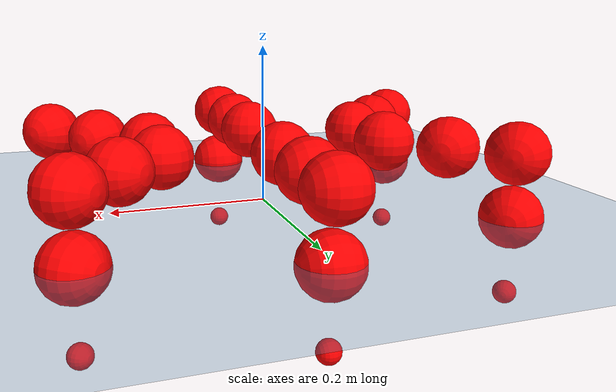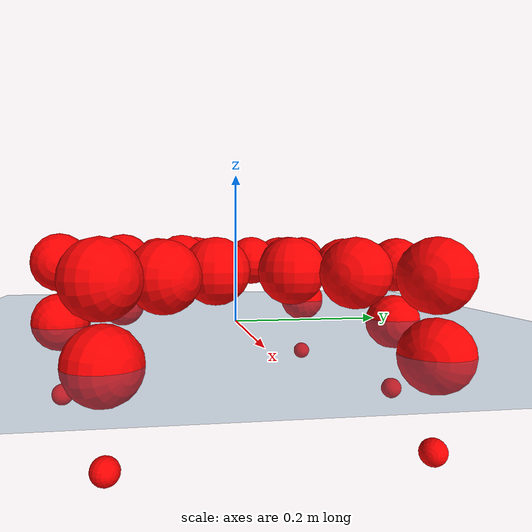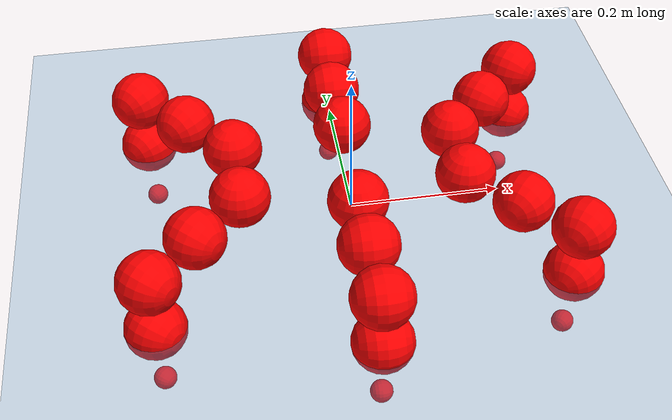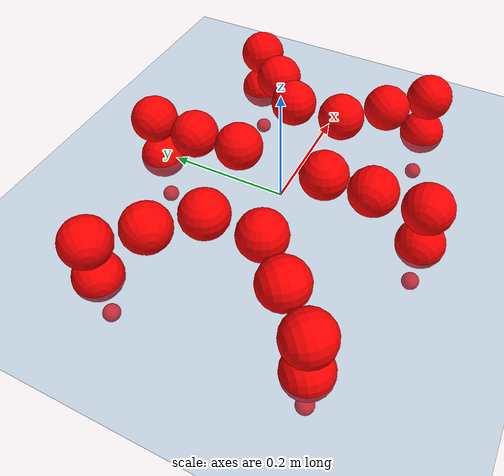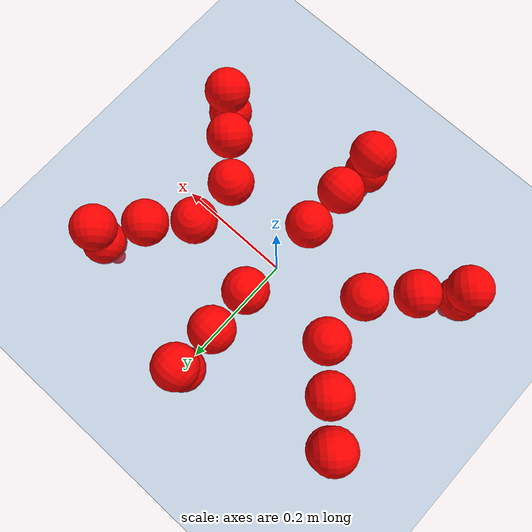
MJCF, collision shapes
<mujoco model="Golem">
  <compiler angle="radian" assetdir="assets" balanceinertia="true" inertiafromgeom="false"/>

  <option timestep="0.005" density="1.2" viscosity="2e-05"/>

  <size nkey="1"/>

  <visual>
    <quality shadowsize="8192"/>
    <map shadowclip="0.5"/>
  </visual>

  <default>
    <default class="/">
      <joint armature="0.01" damping="0.01" frictionloss="0.01"/>
      <geom contype="0" conaffinity="0" group="1" solref="-1000 -80"/>
      <site size="0.01 0.005 0.005" group="5"/>
      <general forcelimited="true" biastype="affine" gainprm="25" biasprm="0 -25 -0.5"/>
      <default class="visual">
        <geom type="mesh" group="2"/>
      </default>
      <default class="collision">
        <geom group="3"/>
      </default>
      <default class="foot">
        <geom size="0.01 0 0" condim="6" group="4" priority="1" solimp="0.015 1 0.01"/>
      </default>
      <default class="reward_collision_sphere">
        <geom group="5" rgba="1 0 0 1"/>
      </default>
    </default>
  </default>

  <asset>
    <texture type="skybox" colorspace="auto" name="//unnamed_texture_0" builtin="gradient" rgb1="0.95 0.95 0.95" rgb2="0.95 0.95 0.95" width="100" height="600"/>
    <texture type="2d" colorspace="auto" name="texplane" builtin="checker" rgb1="0.345 0.575 0.748" rgb2="0.345 0.575 0.748" markrgb="1 1 1" width="512" height="512"/>
    <material name="MatPlane" class="/" texture="texplane" texuniform="true" texrepeat="2 2" specular="0.9"/>
    <mesh name="body" class="/" file="body.stl" scale="0.001 0.001 0.001"/>
    <mesh name="coxa" class="/" file="coxa.stl" scale="0.001 0.001 0.001"/>
    <mesh name="femur" class="/" file="femur.stl" scale="0.001 0.001 0.001"/>
    <mesh name="tibia" class="/" file="tibia.stl" scale="0.001 0.001 0.001"/>
    <mesh name="tarsus" class="/" file="tarsus.stl" scale="0.001 0.001 0.001"/>
  </asset>

  <worldbody>
    <geom name="floor" class="/" size="100 100 0.125" type="plane" group="0" material="MatPlane"/>
    <light name="toplight_shadow" class="/" pos="0 0 5" dir="0.0990148 0.0990148 -0.990148" type="directional" ambient="0.04 0.04 0.04" diffuse="0.55 0.55 0.55" specular="0.12 0.12 0.12"/>
    <light name="toplight_fill" class="/" pos="0 0 5" dir="0.0990148 0.0990148 -0.990148" type="directional" castshadow="false" ambient="0.04 0.04 0.04" diffuse="0.3 0.3 0.3" specular="0.08 0.08 0.08"/>
    <body name="trunk" pos="-0.00226638 -8.31383e-05 -0.0010001" quat="1 -0.000225683 6.1249e-05 -2.18672e-05">
      <inertial pos="-0.000180418 -0.000509082 -0.00143311" quat="0.999902 -0.00348501 -0.01096 -0.00802476" mass="3.31447" diaginertia="0.00645237 0.00287585 0.0261552"/>
      <joint name="//unnamed_joint_0" type="free"/>
      <geom name="//unnamed_geom_1" class="/" pos="0 0 0.0775437" quat="1 0 0 0" type="mesh" rgba="0.9 0.9 0.9 1" mesh="body"/>
      <site name="imu" class="/" pos="0.1221 0.00803939 0.10702" size="0.00968303"/>
      <camera name="track" class="/" pos="0 -1.5566 0" quat="0.707107 0.707107 0 0" mode="trackcom"/>
      <camera name="ego_camera" class="/" pos="0.118948 0 0.121162" quat="-0.5 -0.5 0.5 0.5"/>
      <body name="coxa_RR" pos="-0.164208 -0.0634196 0.079382" quat="0.382092 -8.65509e-05 -0.000159361 -0.924124">
        <inertial pos="0.00265076 0.00280876 0.00300671" quat="0.999997 0.00123126 -0.00197679 -0.000595257" mass="0.183794" diaginertia="0.00644968 0.00297832 0.0257163"/>
        <joint name="coxa_joint_RR" class="/" pos="0 0 0" axis="0.000248286 0.00274208 -0.999996" range="-3.13106 3.14675" armature="0.00959619" damping="0.0120119" frictionloss="0.00946604"/>
        <geom name="//unnamed_geom_2" class="/" type="mesh" rgba="0.2 0.2 0.2 1" mesh="coxa"/>
        <geom name="//unnamed_geom_3" class="reward_collision_sphere" size="0.0387321" pos="-0.0274496 0 0"/>
        <body name="femur_RR" pos="0.0571389 0.0015082 -0.00125393" quat="0.500936 -0.500576 0.499213 0.499274">
          <inertial pos="0.000929903 0.00257632 0.000731305" quat="0.999985 0.00424368 0.00344945 -0.000250495" mass="0.176448" diaginertia="0.00631689 0.00280149 0.0256847"/>
          <joint name="femur_joint_RR" class="/" pos="0 0 0" axis="-0.00104448 0.000582704 -0.999999" stiffness="0.00737072" range="-3.08375 3.08557" armature="0.00966915" damping="0.0263208" frictionloss="0.0109962"/>
          <geom name="//unnamed_geom_4" class="/" type="mesh" rgba="0.9 0.9 0.9 1" mesh="femur"/>
          <geom name="//unnamed_geom_5" class="reward_collision_sphere" size="0.0387321"/>
          <body name="tibia_RR" pos="0.00162912 -0.0837127 0.00327972" quat="0.000863472 0.999999 0.000833902 -0.000862554">
            <inertial pos="-0.00222953 -0.00027439 -0.0010341" quat="0.999906 -0.000111284 0.00382258 -0.0131603" mass="0.179462" diaginertia="0.0065876 0.0028663 0.0266174"/>
            <joint name="tibia_joint_RR" class="/" pos="0 0 0" axis="0.000152576 0.00902006 0.999959" stiffness="0.00639432" range="-3.19227 3.15587" armature="0.00956627" damping="0.00542603" frictionloss="0.00930473"/>
            <geom name="//unnamed_geom_6" class="/" type="mesh" rgba="0.2 0.2 0.2 1" mesh="tibia"/>
            <geom name="//unnamed_geom_7" class="reward_collision_sphere" size="0.0387321"/>
            <body name="tarsus_RR" pos="0.0797384 0.00201545 -0.000646229" quat="0.999999 -0.0010507 -0.000656751 -0.000380116">
              <inertial pos="0.0541919 0.00104552 -0.00261259" quat="0.500099 0.500345 0.499501 0.500054" mass="0.183367" diaginertia="0.00640849 0.002914 0.0260144"/>
              <joint name="tarsus_joint_RR" class="/" pos="0 0 0" axis="-0.0140438 0.00436952 0.999892" range="-3.13889 3.13366" armature="0.00967299" damping="0.0405227" frictionloss="0.00876385"/>
              <geom name="//unnamed_geom_8" class="/" type="mesh" rgba="0.9 0.9 0.9 1" mesh="tarsus"/>
              <geom name="foot_1" class="foot" size="0.00929651" pos="0.102478 0 0" quat="0 -0.707107 0 0.707107"/>
              <geom name="//unnamed_geom_10" class="reward_collision_sphere" size="0.0387321"/>
              <geom name="//unnamed_geom_11" class="reward_collision_sphere" size="0.0145245" pos="0.098361 0 0"/>
              <site name="foot_1" class="foot" pos="0.102478 0 0" quat="0 -0.707107 0 0.707107" size="0.00968303"/>
            </body>
          </body>
        </body>
      </body>
      <body name="coxa_RM" pos="-0.0010138 -0.101971 0.0815113" quat="0.706707 0.000771826 -0.000470374 -0.707506">
        <inertial pos="-0.00103055 -0.000894771 -0.001013" quat="0.999992 0.00153489 0.00351691 -0.00111089" mass="0.18457" diaginertia="0.00625108 0.00298694 0.0260635"/>
        <joint name="coxa_joint_RM" class="/" pos="0 0 0" axis="0.0017744 -0.00366541 -0.999992" range="-3.10002 3.13185" armature="0.0108773" damping="0.0118499" frictionloss="0.0100157"/>
        <geom name="//unnamed_geom_12" class="/" type="mesh" rgba="0.2 0.2 0.2 1" mesh="coxa"/>
        <geom name="//unnamed_geom_13" class="reward_collision_sphere" size="0.0387321" pos="-0.0274496 0 0"/>
        <body name="femur_RM" pos="0.0508413 -0.000176238 0.000931404" quat="0.500826 -0.499331 0.499207 0.500634">
          <inertial pos="-0.000403639 -0.00296817 0.00254206" quat="1 -0.000133556 -1.47077e-05 0.000193689" mass="0.189014" diaginertia="0.00622346 0.00283539 0.0257923"/>
          <joint name="femur_joint_RM" class="/" pos="0 0 0" axis="-0.000527918 0.000501184 -1" range="-3.13647 3.10194" armature="0.00911953" damping="0.0205797" frictionloss="0.00961353"/>
          <geom name="//unnamed_geom_14" class="/" type="mesh" rgba="0.9 0.9 0.9 1" mesh="femur"/>
          <geom name="//unnamed_geom_15" class="reward_collision_sphere" size="0.0387321"/>
          <body name="tibia_RM" pos="-0.000960124 -0.0827286 0.00156376" quat="-0.000147763 1 -8.01377e-05 6.31062e-05">
            <inertial pos="-0.00243837 -2.24796e-05 -0.00170782" quat="0.999945 0.00946379 -0.00353368 0.00271341" mass="0.183193" diaginertia="0.0065332 0.0028357 0.0263568"/>
            <joint name="tibia_joint_RM" class="/" pos="0 0 0" axis="0.0064328 0.00752328 0.999951" stiffness="0.00302836" range="-3.14284 3.14874" armature="0.00960965" damping="0.000203944" frictionloss="0.00882715"/>
            <geom name="//unnamed_geom_16" class="/" type="mesh" rgba="0.2 0.2 0.2 1" mesh="tibia"/>
            <geom name="//unnamed_geom_17" class="reward_collision_sphere" size="0.0387321"/>
            <body name="tarsus_RM" pos="0.0791398 0.000547643 -0.00181054" quat="1 0.000351786 -4.58919e-05 -0.000312239">
              <inertial pos="0.0557609 -0.0004081 0.00033893" quat="0.509991 0.495277 0.495026 0.499558" mass="0.180716" diaginertia="0.00647474 0.00284224 0.0278354"/>
              <joint name="tarsus_joint_RM" class="/" pos="0 0 0" axis="0.00397899 0.00710197 0.999967" range="-3.18791 3.13364" armature="0.00825222" damping="0.00871088" frictionloss="0.00981364"/>
              <geom name="//unnamed_geom_18" class="/" type="mesh" rgba="0.9 0.9 0.9 1" mesh="tarsus"/>
              <geom name="foot_2" class="foot" size="0.0104684" pos="0.102478 0 0" quat="0 -0.707107 0 0.707107"/>
              <geom name="//unnamed_geom_20" class="reward_collision_sphere" size="0.0387321"/>
              <geom name="//unnamed_geom_21" class="reward_collision_sphere" size="0.0145245" pos="0.098361 0 0"/>
              <site name="foot_2" class="foot" pos="0.102478 0 0" quat="0 -0.707107 0 0.707107" size="0.00968303"/>
            </body>
          </body>
        </body>
      </body>
      <body name="coxa_RF" pos="0.162133 -0.0631356 0.078178" quat="0.923988 -0.000123209 0.000418177 -0.38242">
        <inertial pos="0.000878874 0.000645156 0.000156747" quat="0.999988 -0.00425858 -0.00135724 0.00201321" mass="0.183771" diaginertia="0.00633682 0.00277746 0.0260287"/>
        <joint name="coxa_joint_RF" class="/" pos="0 0 0" axis="0.0148338 -0.0105486 -0.999834" stiffness="0.0114863" range="-3.08163 3.12643" armature="0.00831777" damping="0.0257138" frictionloss="0.00964005"/>
        <geom name="//unnamed_geom_22" class="/" type="mesh" rgba="0.2 0.2 0.2 1" mesh="coxa"/>
        <geom name="//unnamed_geom_23" class="reward_collision_sphere" size="0.0387321" pos="-0.0274496 0 0"/>
        <body name="femur_RF" pos="0.0569676 -0.000122769 -0.00198536" quat="0.49954 -0.500006 0.500261 0.500192">
          <inertial pos="-0.000715642 -0.00290145 0.000130695" quat="0.999972 0.000625078 0.00745484 -0.000234542" mass="0.186995" diaginertia="0.00636171 0.00285496 0.0258297"/>
          <joint name="femur_joint_RF" class="/" pos="0 0 0" axis="-0.000861015 -0.000336749 -1" range="-3.13033 3.08183" armature="0.00957261" damping="0.0057501" frictionloss="0.0106983"/>
          <geom name="//unnamed_geom_24" class="/" type="mesh" rgba="0.9 0.9 0.9 1" mesh="femur"/>
          <geom name="//unnamed_geom_25" class="reward_collision_sphere" size="0.0387321"/>
          <body name="tibia_RF" pos="-0.00244577 -0.0814385 0.000320454" quat="0.000632919 0.999999 0.00113991 -7.48283e-05">
            <inertial pos="0.00141483 -4.70964e-05 0.000678333" quat="0.999952 0.00280958 -0.00918693 0.00176168" mass="0.174941" diaginertia="0.00629162 0.0027613 0.0253248"/>
            <joint name="tibia_joint_RF" class="/" pos="0 0 0" axis="7.57967e-05 0.00124268 0.999999" range="-3.13231 3.152" armature="0.00969998" damping="0" frictionloss="0.010867"/>
            <geom name="//unnamed_geom_26" class="/" type="mesh" rgba="0.2 0.2 0.2 1" mesh="tibia"/>
            <geom name="//unnamed_geom_27" class="reward_collision_sphere" size="0.0387321"/>
            <body name="tarsus_RF" pos="0.0785981 -0.000407064 -0.000443142" quat="1 -4.035e-05 2.16701e-05 2.43542e-05">
              <inertial pos="0.0539513 -0.000227939 -0.000489426" quat="0.498151 0.494688 0.496006 0.510987" mass="0.176262" diaginertia="0.00619721 0.00279269 0.0248558"/>
              <joint name="tarsus_joint_RF" class="/" pos="0 0 0" axis="0.00527793 0.0104012 0.999932" stiffness="0.00165259" range="-3.13213 3.15798" armature="0.00947517" damping="0.00714959" frictionloss="0.0109849"/>
              <geom name="//unnamed_geom_28" class="/" type="mesh" rgba="0.9 0.9 0.9 1" mesh="tarsus"/>
              <geom name="foot_3" class="foot" size="0.0100961" pos="0.102478 0 0" quat="0 -0.707107 0 0.707107"/>
              <geom name="//unnamed_geom_30" class="reward_collision_sphere" size="0.0387321"/>
              <geom name="//unnamed_geom_31" class="reward_collision_sphere" size="0.0145245" pos="0.098361 0 0"/>
              <site name="foot_3" class="foot" pos="0.102478 0 0" quat="0 -0.707107 0 0.707107" size="0.00968303"/>
            </body>
          </body>
        </body>
      </body>
      <body name="coxa_LR" pos="-0.166094 0.0671643 0.0796087" quat="0.382731 0.000335091 0.000406117 0.92386">
        <inertial pos="-9.52624e-06 0.000795545 0.00283564" quat="0.999991 -0.00253751 0.00332003 -0.00086273" mass="0.173176" diaginertia="0.00622411 0.00282742 0.0258646"/>
        <joint name="coxa_joint_LR" class="/" pos="0 0 0" axis="-0.00581384 -0.00432156 -0.999974" range="-3.10547 3.13759" armature="0.00833527" damping="0.0201754" frictionloss="0.00939286"/>
        <geom name="//unnamed_geom_32" class="/" type="mesh" rgba="0.2 0.2 0.2 1" mesh="coxa"/>
        <geom name="//unnamed_geom_33" class="reward_collision_sphere" size="0.0387321" pos="-0.0274496 0 0"/>
        <body name="femur_LR" pos="0.0557263 -0.00114123 -9.53858e-05" quat="0.500033 -0.50038 0.498821 0.500764">
          <inertial pos="-0.000326415 -3.86786e-05 0.00268863" quat="0.999908 -0.00234378 -0.00891663 -0.00994333" mass="0.1869" diaginertia="0.00662545 0.00274967 0.0269332"/>
          <joint name="femur_joint_LR" class="/" pos="0 0 0" axis="-0.00170779 -0.0053998 0.999984" range="-3.16061 3.16154" armature="0.00957249" damping="0.00468073" frictionloss="0.00864422"/>
          <geom name="//unnamed_geom_34" class="/" type="mesh" rgba="0.9 0.9 0.9 1" mesh="femur"/>
          <geom name="//unnamed_geom_35" class="reward_collision_sphere" size="0.0387321"/>
          <body name="tibia_LR" pos="-0.000480347 -0.0829634 -0.000147047" quat="6.99127e-05 1 -0.000940062 -4.94473e-05">
            <inertial pos="0.000232436 -0.00215689 -0.00065238" quat="0.999999 -0.00107431 -0.000921596 -0.000191458" mass="0.181838" diaginertia="0.00634363 0.00289593 0.025196"/>
            <joint name="tibia_joint_LR" class="/" pos="0 0 0" axis="-0.000176567 -0.00129514 -0.999999" range="-3.12528 3.17857" armature="0.00824399" damping="0.0126463" frictionloss="0.00845064"/>
            <geom name="//unnamed_geom_36" class="/" type="mesh" rgba="0.2 0.2 0.2 1" mesh="tibia"/>
            <geom name="//unnamed_geom_37" class="reward_collision_sphere" size="0.0387321"/>
            <body name="tarsus_LR" pos="0.0788892 -0.00150599 0.00211884" quat="1 0.000129679 -4.52369e-05 -4.72866e-05">
              <inertial pos="0.0563577 0.00059981 0.00209038" quat="0.502076 0.495818 0.500219 0.501862" mass="0.177608" diaginertia="0.00627528 0.00298671 0.0264908"/>
              <joint name="tarsus_joint_LR" class="/" pos="0 0 0" axis="0.00172983 -0.00274025 -0.999995" stiffness="0.014093" range="-3.1504 3.1005" armature="0.0092053" damping="0.0293236" frictionloss="0.0106826"/>
              <geom name="//unnamed_geom_38" class="/" type="mesh" rgba="0.9 0.9 0.9 1" mesh="tarsus"/>
              <geom name="foot_4" class="foot" size="0.0105658" pos="0.102478 0 0" quat="0.707107 0 -0.707107 0"/>
              <geom name="//unnamed_geom_40" class="reward_collision_sphere" size="0.0387321"/>
              <geom name="//unnamed_geom_41" class="reward_collision_sphere" size="0.0145245" pos="0.098361 0 0"/>
              <site name="foot_4" class="foot" pos="0.102478 0 0" quat="0.707107 0 -0.707107 0" size="0.00968303"/>
            </body>
          </body>
        </body>
      </body>
      <body name="coxa_LM" pos="0.00160939 0.101182 0.0791566" quat="0.707588 -0.000910384 -0.00094825 0.706624">
        <inertial pos="0.000931251 -3.83019e-06 0.00257914" quat="1 0.000156078 0.000834858 0.000211557" mass="0.180907" diaginertia="0.00654588 0.00283336 0.0258244"/>
        <joint name="coxa_joint_LM" class="/" pos="0 0 0" axis="0.0074368 -0.00512176 -0.999959" range="-3.08603 3.08383" armature="0.0104585" damping="0.0156396" frictionloss="0.0110063"/>
        <geom name="//unnamed_geom_42" class="/" type="mesh" rgba="0.2 0.2 0.2 1" mesh="coxa"/>
        <geom name="//unnamed_geom_43" class="reward_collision_sphere" size="0.0387321" pos="-0.0274496 0 0"/>
        <body name="femur_LM" pos="0.0529665 0.00266901 -0.002379" quat="0.500057 -0.499917 0.499914 0.500111">
          <inertial pos="-0.00244067 0.00257122 -0.000937518" quat="0.99995 0.0032595 -0.0094253 -0.000933617" mass="0.186145" diaginertia="0.00672708 0.00283089 0.0272608"/>
          <joint name="femur_joint_LM" class="/" pos="0 0 0" axis="0.00293216 -0.0119832 0.999924" stiffness="0.0105371" range="-3.08571 3.14463" armature="0.00965185" damping="0" frictionloss="0.00929083"/>
          <geom name="//unnamed_geom_44" class="/" type="mesh" rgba="0.9 0.9 0.9 1" mesh="femur"/>
          <geom name="//unnamed_geom_45" class="reward_collision_sphere" size="0.0387321"/>
          <body name="tibia_LM" pos="-0.00090235 -0.079984 -0.00199975" quat="-8.30539e-05 1 0.000121765 -0.000216671">
            <inertial pos="0.00247899 0.00129758 0.0029282" quat="0.999924 -0.00792683 0.00849744 -0.00399719" mass="0.18198" diaginertia="0.00626329 0.00281036 0.0252442"/>
            <joint name="tibia_joint_LM" class="/" pos="0 0 0" axis="0.00792843 0.0118207 -0.999899" range="-3.18945 3.183" armature="0.00946055" damping="0" frictionloss="0.00838389"/>
            <geom name="//unnamed_geom_46" class="/" type="mesh" rgba="0.2 0.2 0.2 1" mesh="tibia"/>
            <geom name="//unnamed_geom_47" class="reward_collision_sphere" size="0.0387321"/>
            <body name="tarsus_LM" pos="0.0824169 -0.00356289 0.00216909" quat="1 2.2533e-06 0.000291977 -0.000106835">
              <inertial pos="0.0532033 0.000520659 0.000155242" quat="0.500663 0.501694 0.508488 0.488958" mass="0.184093" diaginertia="0.0067377 0.00288608 0.0260488"/>
              <joint name="tarsus_joint_LM" class="/" pos="0 0 0" axis="0.00687652 0.0120014 -0.999904" stiffness="0.00379549" range="-3.1339 3.08992" armature="0.010229" damping="0.00874661" frictionloss="0.00967398"/>
              <geom name="//unnamed_geom_48" class="/" type="mesh" rgba="0.9 0.9 0.9 1" mesh="tarsus"/>
              <geom name="foot_5" class="foot" size="0.0107427" pos="0.102478 0 0" quat="0.707107 0 -0.707107 0"/>
              <geom name="//unnamed_geom_50" class="reward_collision_sphere" size="0.0387321"/>
              <geom name="//unnamed_geom_51" class="reward_collision_sphere" size="0.0145245" pos="0.098361 0 0"/>
              <site name="foot_5" class="foot" pos="0.102478 0 0" quat="0.707107 0 -0.707107 0" size="0.00968303"/>
            </body>
          </body>
        </body>
      </body>
      <body name="coxa_LF" pos="0.161936 0.0632258 0.0779097" quat="0.923883 1.6916e-06 -7.52338e-06 0.382674">
        <inertial pos="0.00077826 0.00179198 0.00011756" quat="1 -8.75917e-05 0.000162033 4.33875e-05" mass="0.177987" diaginertia="0.00621745 0.0028501 0.0260228"/>
        <joint name="coxa_joint_LF" class="/" pos="0 0 0" axis="-2.51408e-05 -0.000520894 -1" range="-3.15322 3.08223" armature="0.0107046" damping="0.0110262" frictionloss="0.00978538"/>
        <geom name="//unnamed_geom_52" class="/" type="mesh" rgba="0.2 0.2 0.2 1" mesh="coxa"/>
        <geom name="//unnamed_geom_53" class="reward_collision_sphere" size="0.0387321" pos="-0.0274496 0 0"/>
        <body name="femur_LF" pos="0.051738 -5.79642e-05 0.000266611" quat="0.499205 -0.499662 0.500224 0.500907">
          <inertial pos="-0.00150008 0.00261101 -0.00207918" quat="0.999988 0.00415394 0.00201176 0.00169128" mass="0.179755" diaginertia="0.00622494 0.002682 0.0252652"/>
          <joint name="femur_joint_LF" class="/" pos="0 0 0" axis="-0.000592981 -0.00895055 0.99996" stiffness="0.0100961" range="-3.13845 3.11909" armature="0.00879617" damping="0" frictionloss="0.0103127"/>
          <geom name="//unnamed_geom_54" class="/" type="mesh" rgba="0.9 0.9 0.9 1" mesh="femur"/>
          <geom name="//unnamed_geom_55" class="reward_collision_sphere" size="0.0387321"/>
          <body name="tibia_LF" pos="-0.000397054 -0.0838757 0.00386807" quat="-3.27528e-05 1 0.000567518 -0.000691523">
            <inertial pos="0.00235692 0.0030176 0.000476306" quat="0.99999 -0.000309472 -0.0038599 -0.00236111" mass="0.181255" diaginertia="0.00639255 0.00292063 0.027163"/>
            <joint name="tibia_joint_LF" class="/" pos="0 0 0" axis="0.00352181 0.000945573 -0.999993" range="-3.15801 3.08273" armature="0.00994194" damping="0.00504368" frictionloss="0.00953944"/>
            <geom name="//unnamed_geom_56" class="/" type="mesh" rgba="0.2 0.2 0.2 1" mesh="tibia"/>
            <geom name="//unnamed_geom_57" class="reward_collision_sphere" size="0.0387321"/>
            <body name="tarsus_LF" pos="0.0801458 0.00203396 -0.00126757" quat="1 0.000122522 8.38338e-05 -5.89824e-05">
              <inertial pos="0.056871 -0.00104552 -0.000904278" quat="0.501234 0.498303 0.496992 0.503445" mass="0.174946" diaginertia="0.00609243 0.00278129 0.0252245"/>
              <joint name="tarsus_joint_LF" class="/" pos="0 0 0" axis="0.00105848 0.00588416 -0.999982" range="-3.111 3.13455" armature="0.00962716" damping="0.00741135" frictionloss="0.0101073"/>
              <geom name="//unnamed_geom_58" class="/" type="mesh" rgba="0.9 0.9 0.9 1" mesh="tarsus"/>
              <geom name="foot_6" class="foot" size="0.00895705" pos="0.102478 0 0" quat="0.707107 0 -0.707107 0"/>
              <geom name="//unnamed_geom_60" class="reward_collision_sphere" size="0.0387321"/>
              <geom name="//unnamed_geom_61" class="reward_collision_sphere" size="0.0145245" pos="0.098361 0 0"/>
              <site name="foot_6" class="foot" pos="0.102478 0 0" quat="0.707107 0 -0.707107 0" size="0.00968303"/>
            </body>
          </body>
        </body>
      </body>
    </body>
  </worldbody>

  <contact>
    <pair class="/" geom1="floor" geom2="foot_1" name="//unnamed_contact_0"/>
    <pair class="/" geom1="floor" geom2="foot_2" name="//unnamed_contact_1"/>
    <pair class="/" geom1="floor" geom2="foot_3" name="//unnamed_contact_2"/>
    <pair class="/" geom1="floor" geom2="foot_4" name="//unnamed_contact_3"/>
    <pair class="/" geom1="floor" geom2="foot_5" name="//unnamed_contact_4"/>
    <pair class="/" geom1="floor" geom2="foot_6" name="//unnamed_contact_5"/>
  </contact>

  <actuator>
    <general name="coxa_joint_RR" class="/" joint="coxa_joint_RR" forcerange="-6.928 6.928" gainprm="24.5379" biasprm="0 -24.5379 -0.462266"/>
    <general name="femur_joint_RR" class="/" joint="femur_joint_RR" forcerange="-7.03993 7.03993" gainprm="24.5379" biasprm="0 -24.5379 -0.462266"/>
    <general name="tibia_joint_RR" class="/" joint="tibia_joint_RR" forcerange="-6.7972 6.7972" gainprm="24.5379" biasprm="0 -24.5379 -0.462266"/>
    <general name="tarsus_joint_RR" class="/" joint="tarsus_joint_RR" forcerange="-6.56952 6.56952" gainprm="24.5379" biasprm="0 -24.5379 -0.462266"/>
    <general name="coxa_joint_RM" class="/" joint="coxa_joint_RM" forcerange="-6.49365 6.49365" gainprm="24.5379" biasprm="0 -24.5379 -0.462266"/>
    <general name="femur_joint_RM" class="/" joint="femur_joint_RM" forcerange="-6.54259 6.54259" gainprm="24.5379" biasprm="0 -24.5379 -0.462266"/>
    <general name="tibia_joint_RM" class="/" joint="tibia_joint_RM" forcerange="-7.00246 7.00246" gainprm="24.5379" biasprm="0 -24.5379 -0.462266"/>
    <general name="tarsus_joint_RM" class="/" joint="tarsus_joint_RM" forcerange="-7.72866 7.72866" gainprm="24.5379" biasprm="0 -24.5379 -0.462266"/>
    <general name="coxa_joint_RF" class="/" joint="coxa_joint_RF" forcerange="-6.61513 6.61513" gainprm="24.5379" biasprm="0 -24.5379 -0.462266"/>
    <general name="femur_joint_RF" class="/" joint="femur_joint_RF" forcerange="-6.48775 6.48775" gainprm="24.5379" biasprm="0 -24.5379 -0.462266"/>
    <general name="tibia_joint_RF" class="/" joint="tibia_joint_RF" forcerange="-7.69432 7.69432" gainprm="24.5379" biasprm="0 -24.5379 -0.462266"/>
    <general name="tarsus_joint_RF" class="/" joint="tarsus_joint_RF" forcerange="-7.80371 7.80371" gainprm="24.5379" biasprm="0 -24.5379 -0.462266"/>
    <general name="coxa_joint_LR" class="/" joint="coxa_joint_LR" forcerange="-7.14765 7.14765" gainprm="24.5379" biasprm="0 -24.5379 -0.462266"/>
    <general name="femur_joint_LR" class="/" joint="femur_joint_LR" forcerange="-6.32491 6.32491" gainprm="24.5379" biasprm="0 -24.5379 -0.462266"/>
    <general name="tibia_joint_LR" class="/" joint="tibia_joint_LR" forcerange="-6.91146 6.91146" gainprm="24.5379" biasprm="0 -24.5379 -0.462266"/>
    <general name="tarsus_joint_LR" class="/" joint="tarsus_joint_LR" forcerange="-7.0951 7.0951" gainprm="24.5379" biasprm="0 -24.5379 -0.462266"/>
    <general name="coxa_joint_LM" class="/" joint="coxa_joint_LM" forcerange="-7.82117 7.82117" gainprm="24.5379" biasprm="0 -24.5379 -0.462266"/>
    <general name="femur_joint_LM" class="/" joint="femur_joint_LM" forcerange="-7.09365 7.09365" gainprm="24.5379" biasprm="0 -24.5379 -0.462266"/>
    <general name="tibia_joint_LM" class="/" joint="tibia_joint_LM" forcerange="-6.98465 6.98465" gainprm="24.5379" biasprm="0 -24.5379 -0.462266"/>
    <general name="tarsus_joint_LM" class="/" joint="tarsus_joint_LM" forcerange="-6.35449 6.35449" gainprm="24.5379" biasprm="0 -24.5379 -0.462266"/>
    <general name="coxa_joint_LF" class="/" joint="coxa_joint_LF" forcerange="-6.93874 6.93874" gainprm="24.5379" biasprm="0 -24.5379 -0.462266"/>
    <general name="femur_joint_LF" class="/" joint="femur_joint_LF" forcerange="-7.03601 7.03601" gainprm="24.5379" biasprm="0 -24.5379 -0.462266"/>
    <general name="tibia_joint_LF" class="/" joint="tibia_joint_LF" forcerange="-7.72297 7.72297" gainprm="24.5379" biasprm="0 -24.5379 -0.462266"/>
    <general name="tarsus_joint_LF" class="/" joint="tarsus_joint_LF" forcerange="-7.21424 7.21424" gainprm="24.5379" biasprm="0 -24.5379 -0.462266"/>
  </actuator>

  <sensor>
    <gyro site="imu" name="imu_angular_velocity"/>
    <velocimeter site="imu" name="imu_linear_velocity"/>
    <framelinvel objtype="site" objname="foot_1" name="foot_1_global_linear_velocity"/>
    <framelinvel objtype="site" objname="foot_2" name="foot_2_global_linear_velocity"/>
    <framelinvel objtype="site" objname="foot_3" name="foot_3_global_linear_velocity"/>
    <framelinvel objtype="site" objname="foot_4" name="foot_4_global_linear_velocity"/>
    <framelinvel objtype="site" objname="foot_5" name="foot_5_global_linear_velocity"/>
    <framelinvel objtype="site" objname="foot_6" name="foot_6_global_linear_velocity"/>
  </sensor>

  <keyframe>
    <key name="home" qpos="0 0 0.1457 1 0 0 0 0 0 0 0 0 0 0 0 0 0 0 0 0 0 0 0 0 0 0 0 0 0 0 0"/>
  </keyframe>
</mujoco>
